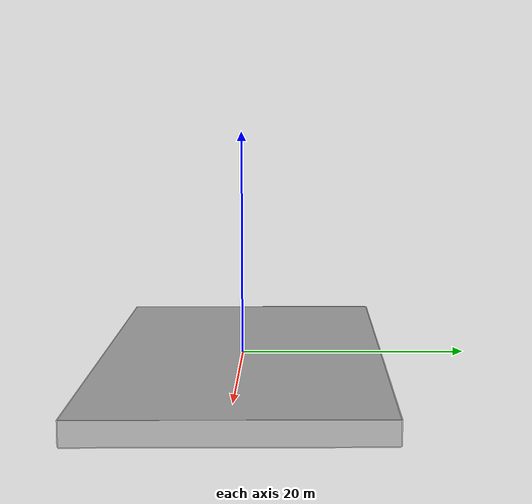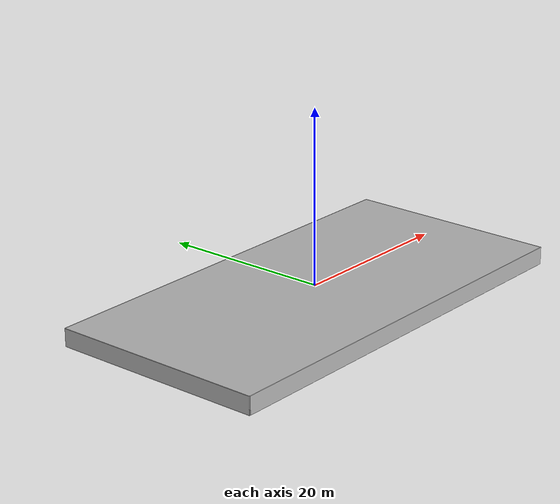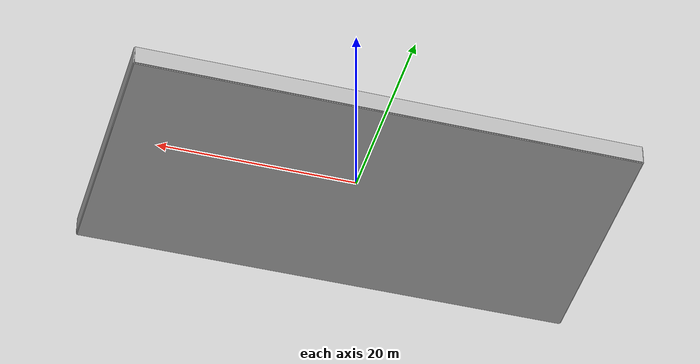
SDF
<?xml version="1.0"?>
<sdf version="1.11">  <model name="robosub_swimming_pool_2022">
    <static>true</static>
    <link name="link">
      <visual name="ground">
        <cast_shadows>false</cast_shadows>
        <pose>0 0 -2.05 0 0 0</pose>
        <geometry>
          <box>
            <size>50 25 0.1</size>
          </box>
        </geometry>
        <material>
          <script>
            <uri>file://materials/scripts/tiles.material</uri>
            <name>SAUVC2019/Tiles</name>
          </script>
        </material>
      </visual>

      <collision name="ground">
        <pose>0 0 -2.05 0 0 0</pose>
        <geometry>
          <box>
            <size>50 25 0.1</size>
          </box>
        </geometry>
      </collision>

      <visual name="surface">
        <cast_shadows>false</cast_shadows>
        <pose>0 0 -0.05 0 0 0</pose>
        <geometry>
          <box>
            <size>50 25 0.1</size>
          </box>
        </geometry>
        <material>
          <script>
            <uri>file://materials/scripts/water.material</uri>
            <name>SAUVC2019/StaticWater</name>
          </script>
        </material>
      </visual>

      <visual name="north">
        <cast_shadows>false</cast_shadows>
        <pose>25.05 0 -1 0 0 0</pose>
        <geometry>
          <box>
            <size>0.1 25 2</size>
          </box>
        </geometry>
        <material>
          <script>
            <uri>file://materials/scripts/tiles.material</uri>
            <name>SAUVC2019/Tiles</name>
          </script>
        </material>
      </visual>

      <collision name="north">
        <pose>25.05 0 -1 0 0 0</pose>
        <geometry>
          <box>
            <size>0.1 25 2</size>
          </box>
        </geometry>
      </collision>

      <visual name="south">
        <cast_shadows>false</cast_shadows>
        <pose>-25.05 0 -1 0 0 0</pose>
        <geometry>
          <box>
            <size>0.1 25 2</size>
          </box>
        </geometry>
        <material>
          <script>
            <uri>file://materials/scripts/tiles.material</uri>
            <name>SAUVC2019/Tiles</name>
          </script>
        </material>
      </visual>

      <collision name="south">
        <pose>-25.05 0 -1 0 0 0</pose>
        <geometry>
          <box>
            <size>0.1 25 2</size>
          </box>
        </geometry>
      </collision>

      <visual name="east">
        <cast_shadows>false</cast_shadows>
        <pose>0 -12.55 -1 0 0 0</pose>
        <geometry>
          <box>
            <size>50 0.1 2</size>
          </box>
        </geometry>
        <material>
          <script>
            <uri>file://materials/scripts/tiles.material</uri>
            <name>SAUVC2019/Tiles</name>
          </script>
        </material>
      </visual>

      <collision name="east">
        <pose>0 -12.55 -1 0 0 0</pose>
        <geometry>
          <box>
            <size>50 0.1 2</size>
          </box>
        </geometry>
      </collision>

      <visual name="west">
        <cast_shadows>false</cast_shadows>
        <pose>0 12.55 -1 0 0 0</pose>
        <geometry>
          <box>
            <size>50 0.1 2</size>
          </box>
        </geometry>
        <material>
          <script>
            <uri>file://materials/scripts/tiles.material</uri>
            <name>SAUVC2019/Tiles</name>
          </script>
        </material>
      </visual>

      <collision name="west">
        <pose>0 12.55 -1 0 0 0</pose>
        <geometry>
          <box>
            <size>50 0.1 2</size>
          </box>
        </geometry>
      </collision>
    </link>
  </model>
</sdf>
